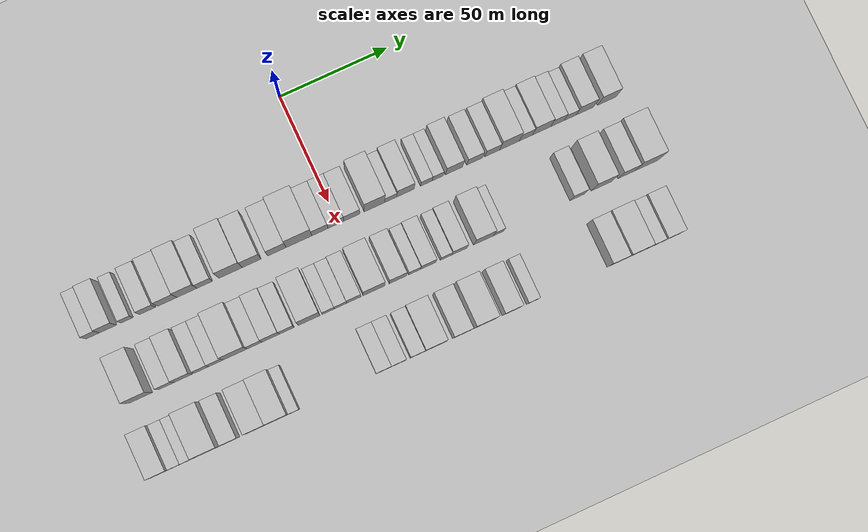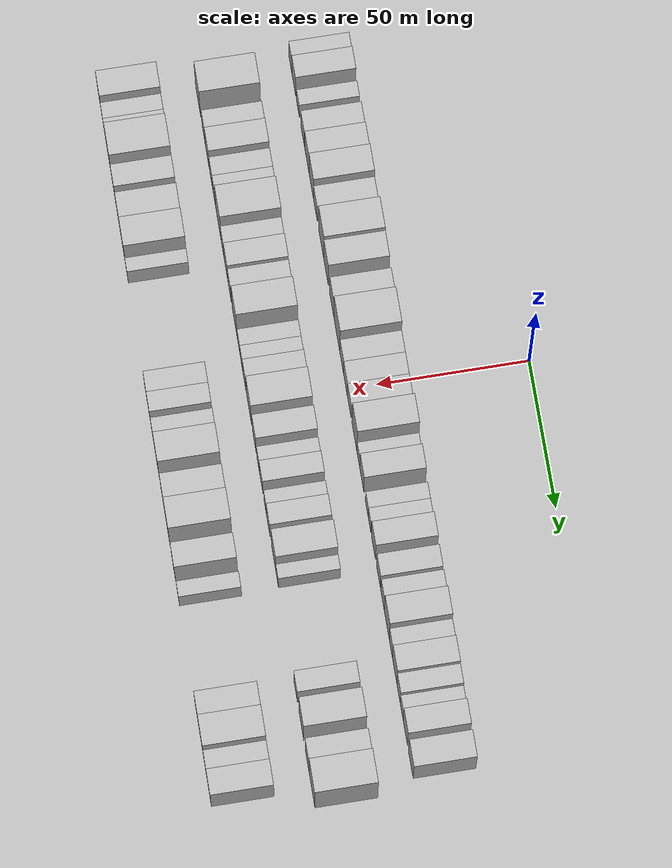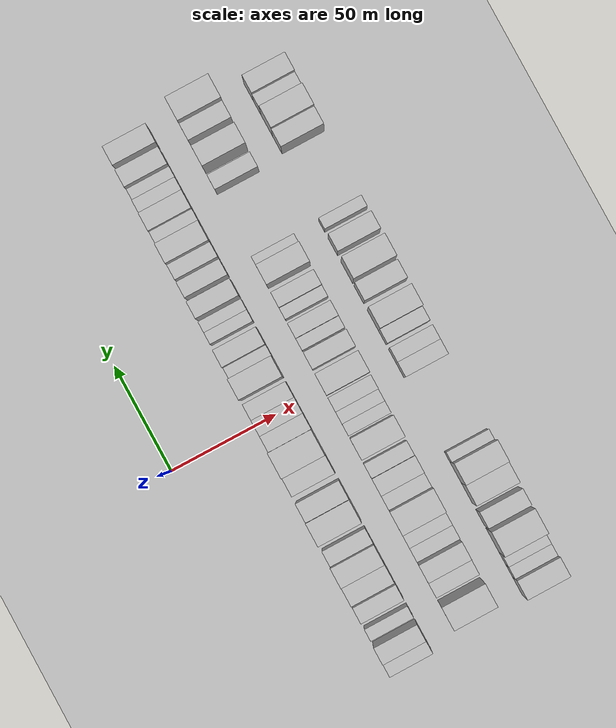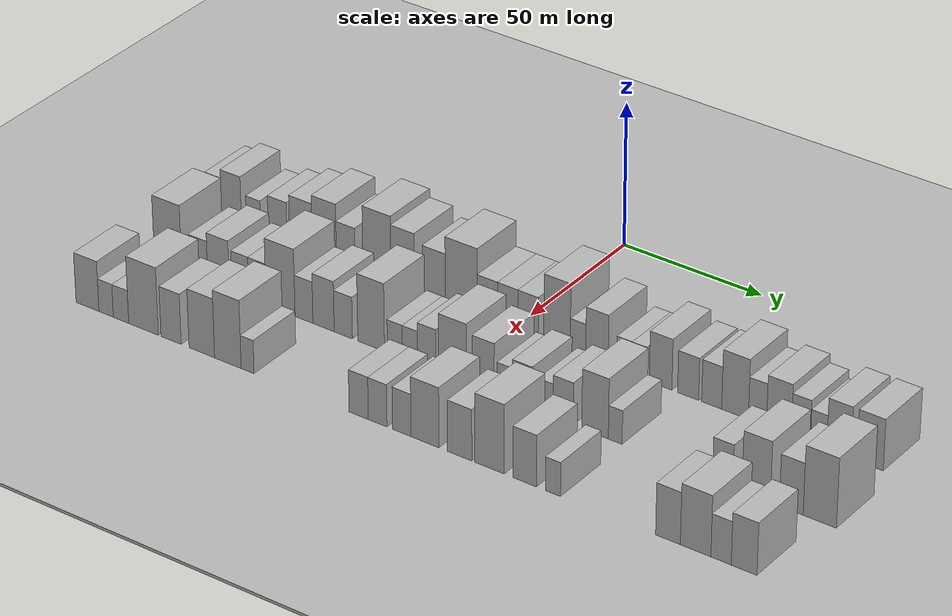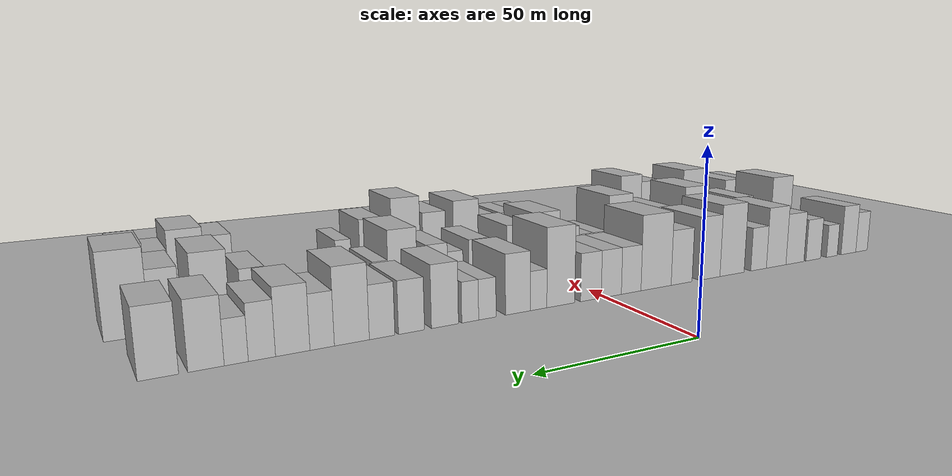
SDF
<sdf version="1.6">
 <world name="default">
  <include><name>ground_plane_1</name><uri>model://HANNAS_ground_plane</uri></include>
  <include>
   <name>ground_plane_2</name>
   <uri>model://HANNAS_ground_plane</uri>
   <pose>100 0 0  0 0 0</pose>
  </include>
  <model name="building_25">
   <static>1</static>
   <pose>50.0000 -112.9445 0 0.000000 0.000000 0.000000</pose>
   <link name="link">
    <pose>0 0 7.50 0 0 0</pose>
    <collision name="collision"><geometry><box><size>20.0000 6.1671 15.0000</size></box></geometry></collision>
    <visual name="visual">
     <cast_shadows>0</cast_shadows>
     <geometry><box><size>20.0000 6.1671 15.0000</size></box></geometry>
     <material>
      <script>
       <uri>model://HANNAS_wall/materials/scripts</uri>
       <uri>model://HANNAS_wall/materials/textures</uri>
       <name>vrc/HANNAS_wall</name>
      </script>
     </material>
    </visual>
   </link>
  </model>
  <model name="building_26">
   <static>1</static>
   <pose>50.0000 -105.9658 0 0.000000 0.000000 0.000000</pose>
   <link name="link">
    <pose>0 0 9.00 0 0 0</pose>
    <collision name="collision"><geometry><box><size>20.0000 7.7904 18.0000</size></box></geometry></collision>
    <visual name="visual">
     <cast_shadows>0</cast_shadows>
     <geometry><box><size>20.0000 7.7904 18.0000</size></box></geometry>
     <material>
      <script>
       <uri>model://HANNAS_wall/materials/scripts</uri>
       <uri>model://HANNAS_wall/materials/textures</uri>
       <name>vrc/HANNAS_wall</name>
      </script>
     </material>
    </visual>
   </link>
  </model>
  <model name="building_27">
   <static>1</static>
   <pose>50.0000 -97.3130 0 0.000000 0.000000 0.000000</pose>
   <link name="link">
    <pose>0 0 6.00 0 0 0</pose>
    <collision name="collision"><geometry><box><size>20.0000 5.5154 12.0000</size></box></geometry></collision>
    <visual name="visual">
     <cast_shadows>0</cast_shadows>
     <geometry><box><size>20.0000 5.5154 12.0000</size></box></geometry>
     <material>
      <script>
       <uri>model://HANNAS_wall/materials/scripts</uri>
       <uri>model://HANNAS_wall/materials/textures</uri>
       <name>vrc/HANNAS_wall</name>
      </script>
     </material>
    </visual>
   </link>
  </model>
  <model name="building_28">
   <static>1</static>
   <pose>50.0000 -87.8930 0 0.000000 0.000000 0.000000</pose>
   <link name="link">
    <pose>0 0 7.50 0 0 0</pose>
    <collision name="collision"><geometry><box><size>20.0000 7.3246 15.0000</size></box></geometry></collision>
    <visual name="visual">
     <cast_shadows>0</cast_shadows>
     <geometry><box><size>20.0000 7.3246 15.0000</size></box></geometry>
     <material>
      <script>
       <uri>model://HANNAS_wall/materials/scripts</uri>
       <uri>model://HANNAS_wall/materials/textures</uri>
       <name>vrc/HANNAS_wall</name>
      </script>
     </material>
    </visual>
   </link>
  </model>
  <model name="building_29">
   <static>1</static>
   <pose>50.0000 -78.8651 0 0.000000 0.000000 0.000000</pose>
   <link name="link">
    <pose>0 0 9.00 0 0 0</pose>
    <collision name="collision"><geometry><box><size>20.0000 8.7313 18.0000</size></box></geometry></collision>
    <visual name="visual">
     <cast_shadows>0</cast_shadows>
     <geometry><box><size>20.0000 8.7313 18.0000</size></box></geometry>
     <material>
      <script>
       <uri>model://HANNAS_wall/materials/scripts</uri>
       <uri>model://HANNAS_wall/materials/textures</uri>
       <name>vrc/HANNAS_wall</name>
      </script>
     </material>
    </visual>
   </link>
  </model>
  <model name="building_30">
   <static>1</static>
   <pose>50.0000 -69.8941 0 0.000000 0.000000 0.000000</pose>
   <link name="link">
    <pose>0 0 10.50 0 0 0</pose>
    <collision name="collision"><geometry><box><size>20.0000 9.2106 21.0000</size></box></geometry></collision>
    <visual name="visual">
     <cast_shadows>0</cast_shadows>
     <geometry><box><size>20.0000 9.2106 21.0000</size></box></geometry>
     <material>
      <script>
       <uri>model://HANNAS_wall/materials/scripts</uri>
       <uri>model://HANNAS_wall/materials/textures</uri>
       <name>vrc/HANNAS_wall</name>
      </script>
     </material>
    </visual>
   </link>
  </model>
  <model name="building_31">
   <static>1</static>
   <pose>50.0000 -61.7174 0 0.000000 0.000000 0.000000</pose>
   <link name="link">
    <pose>0 0 7.50 0 0 0</pose>
    <collision name="collision"><geometry><box><size>20.0000 7.1428 15.0000</size></box></geometry></collision>
    <visual name="visual">
     <cast_shadows>0</cast_shadows>
     <geometry><box><size>20.0000 7.1428 15.0000</size></box></geometry>
     <material>
      <script>
       <uri>model://HANNAS_wall/materials/scripts</uri>
       <uri>model://HANNAS_wall/materials/textures</uri>
       <name>vrc/HANNAS_wall</name>
      </script>
     </material>
    </visual>
   </link>
  </model>
  <model name="building_32">
   <static>1</static>
   <pose>50.0000 -49.8279 0 0.000000 0.000000 0.000000</pose>
   <link name="link">
    <pose>0 0 12.00 0 0 0</pose>
    <collision name="collision"><geometry><box><size>20.0000 10.6363 24.0000</size></box></geometry></collision>
    <visual name="visual">
     <cast_shadows>0</cast_shadows>
     <geometry><box><size>20.0000 10.6363 24.0000</size></box></geometry>
     <material>
      <script>
       <uri>model://HANNAS_wall/materials/scripts</uri>
       <uri>model://HANNAS_wall/materials/textures</uri>
       <name>vrc/HANNAS_wall</name>
      </script>
     </material>
    </visual>
   </link>
  </model>
  <model name="building_33">
   <static>1</static>
   <pose>50.0000 -40.1255 0 0.000000 0.000000 0.000000</pose>
   <link name="link">
    <pose>0 0 10.50 0 0 0</pose>
    <collision name="collision"><geometry><box><size>20.0000 8.7684 21.0000</size></box></geometry></collision>
    <visual name="visual">
     <cast_shadows>0</cast_shadows>
     <geometry><box><size>20.0000 8.7684 21.0000</size></box></geometry>
     <material>
      <script>
       <uri>model://HANNAS_wall/materials/scripts</uri>
       <uri>model://HANNAS_wall/materials/textures</uri>
       <name>vrc/HANNAS_wall</name>
      </script>
     </material>
    </visual>
   </link>
  </model>
  <model name="building_34">
   <static>1</static>
   <pose>50.0000 -28.4858 0 0.000000 0.000000 0.000000</pose>
   <link name="link">
    <pose>0 0 9.00 0 0 0</pose>
    <collision name="collision"><geometry><box><size>20.0000 8.5110 18.0000</size></box></geometry></collision>
    <visual name="visual">
     <cast_shadows>0</cast_shadows>
     <geometry><box><size>20.0000 8.5110 18.0000</size></box></geometry>
     <material>
      <script>
       <uri>model://HANNAS_wall/materials/scripts</uri>
       <uri>model://HANNAS_wall/materials/textures</uri>
       <name>vrc/HANNAS_wall</name>
      </script>
     </material>
    </visual>
   </link>
  </model>
  <model name="building_35">
   <static>1</static>
   <pose>50.0000 -18.3038 0 0.000000 0.000000 0.000000</pose>
   <link name="link">
    <pose>0 0 12.00 0 0 0</pose>
    <collision name="collision"><geometry><box><size>20.0000 11.8528 24.0000</size></box></geometry></collision>
    <visual name="visual">
     <cast_shadows>0</cast_shadows>
     <geometry><box><size>20.0000 11.8528 24.0000</size></box></geometry>
     <material>
      <script>
       <uri>model://HANNAS_wall/materials/scripts</uri>
       <uri>model://HANNAS_wall/materials/textures</uri>
       <name>vrc/HANNAS_wall</name>
      </script>
     </material>
    </visual>
   </link>
  </model>
  <model name="building_36">
   <static>1</static>
   <pose>50.0000 -8.6696 0 0.000000 0.000000 0.000000</pose>
   <link name="link">
    <pose>0 0 7.50 0 0 0</pose>
    <collision name="collision"><geometry><box><size>20.0000 7.4157 15.0000</size></box></geometry></collision>
    <visual name="visual">
     <cast_shadows>0</cast_shadows>
     <geometry><box><size>20.0000 7.4157 15.0000</size></box></geometry>
     <material>
      <script>
       <uri>model://HANNAS_wall/materials/scripts</uri>
       <uri>model://HANNAS_wall/materials/textures</uri>
       <name>vrc/HANNAS_wall</name>
      </script>
     </material>
    </visual>
   </link>
  </model>
  <model name="building_37">
   <static>1</static>
   <pose>50.0000 -1.2589 0 0.000000 0.000000 0.000000</pose>
   <link name="link">
    <pose>0 0 7.50 0 0 0</pose>
    <collision name="collision"><geometry><box><size>20.0000 7.4055 15.0000</size></box></geometry></collision>
    <visual name="visual">
     <cast_shadows>0</cast_shadows>
     <geometry><box><size>20.0000 7.4055 15.0000</size></box></geometry>
     <material>
      <script>
       <uri>model://HANNAS_wall/materials/scripts</uri>
       <uri>model://HANNAS_wall/materials/textures</uri>
       <name>vrc/HANNAS_wall</name>
      </script>
     </material>
    </visual>
   </link>
  </model>
  <model name="building_38">
   <static>1</static>
   <pose>50.0000 6.1546 0 0.000000 0.000000 0.000000</pose>
   <link name="link">
    <pose>0 0 7.50 0 0 0</pose>
    <collision name="collision"><geometry><box><size>20.0000 7.4217 15.0000</size></box></geometry></collision>
    <visual name="visual">
     <cast_shadows>0</cast_shadows>
     <geometry><box><size>20.0000 7.4217 15.0000</size></box></geometry>
     <material>
      <script>
       <uri>model://HANNAS_wall/materials/scripts</uri>
       <uri>model://HANNAS_wall/materials/textures</uri>
       <name>vrc/HANNAS_wall</name>
      </script>
     </material>
    </visual>
   </link>
  </model>
  <model name="building_39">
   <static>1</static>
   <pose>50.0000 16.6704 0 0.000000 0.000000 0.000000</pose>
   <link name="link">
    <pose>0 0 12.00 0 0 0</pose>
    <collision name="collision"><geometry><box><size>20.0000 9.6098 24.0000</size></box></geometry></collision>
    <visual name="visual">
     <cast_shadows>0</cast_shadows>
     <geometry><box><size>20.0000 9.6098 24.0000</size></box></geometry>
     <material>
      <script>
       <uri>model://HANNAS_wall/materials/scripts</uri>
       <uri>model://HANNAS_wall/materials/textures</uri>
       <name>vrc/HANNAS_wall</name>
      </script>
     </material>
    </visual>
   </link>
  </model>
  <model name="building_40">
   <static>1</static>
   <pose>50.0000 24.2228 0 0.000000 0.000000 0.000000</pose>
   <link name="link">
    <pose>0 0 6.00 0 0 0</pose>
    <collision name="collision"><geometry><box><size>20.0000 5.4951 12.0000</size></box></geometry></collision>
    <visual name="visual">
     <cast_shadows>0</cast_shadows>
     <geometry><box><size>20.0000 5.4951 12.0000</size></box></geometry>
     <material>
      <script>
       <uri>model://HANNAS_wall/materials/scripts</uri>
       <uri>model://HANNAS_wall/materials/textures</uri>
       <name>vrc/HANNAS_wall</name>
      </script>
     </material>
    </visual>
   </link>
  </model>
  <model name="building_41">
   <static>1</static>
   <pose>50.0000 30.9962 0 0.000000 0.000000 0.000000</pose>
   <link name="link">
    <pose>0 0 9.00 0 0 0</pose>
    <collision name="collision"><geometry><box><size>20.0000 8.0516 18.0000</size></box></geometry></collision>
    <visual name="visual">
     <cast_shadows>0</cast_shadows>
     <geometry><box><size>20.0000 8.0516 18.0000</size></box></geometry>
     <material>
      <script>
       <uri>model://HANNAS_wall/materials/scripts</uri>
       <uri>model://HANNAS_wall/materials/textures</uri>
       <name>vrc/HANNAS_wall</name>
      </script>
     </material>
    </visual>
   </link>
  </model>
  <model name="building_42">
   <static>1</static>
   <pose>50.0000 40.7320 0 0.000000 0.000000 0.000000</pose>
   <link name="link">
    <pose>0 0 6.00 0 0 0</pose>
    <collision name="collision"><geometry><box><size>20.0000 5.4200 12.0000</size></box></geometry></collision>
    <visual name="visual">
     <cast_shadows>0</cast_shadows>
     <geometry><box><size>20.0000 5.4200 12.0000</size></box></geometry>
     <material>
      <script>
       <uri>model://HANNAS_wall/materials/scripts</uri>
       <uri>model://HANNAS_wall/materials/textures</uri>
       <name>vrc/HANNAS_wall</name>
      </script>
     </material>
    </visual>
   </link>
  </model>
  <model name="building_43">
   <static>1</static>
   <pose>50.0000 46.0073 0 0.000000 0.000000 0.000000</pose>
   <link name="link">
    <pose>0 0 6.00 0 0 0</pose>
    <collision name="collision"><geometry><box><size>20.0000 5.1305 12.0000</size></box></geometry></collision>
    <visual name="visual">
     <cast_shadows>0</cast_shadows>
     <geometry><box><size>20.0000 5.1305 12.0000</size></box></geometry>
     <material>
      <script>
       <uri>model://HANNAS_wall/materials/scripts</uri>
       <uri>model://HANNAS_wall/materials/textures</uri>
       <name>vrc/HANNAS_wall</name>
      </script>
     </material>
    </visual>
   </link>
  </model>
  <model name="building_44">
   <static>1</static>
   <pose>50.0000 53.5594 0 0.000000 0.000000 0.000000</pose>
   <link name="link">
    <pose>0 0 9.00 0 0 0</pose>
    <collision name="collision"><geometry><box><size>20.0000 7.9737 18.0000</size></box></geometry></collision>
    <visual name="visual">
     <cast_shadows>0</cast_shadows>
     <geometry><box><size>20.0000 7.9737 18.0000</size></box></geometry>
     <material>
      <script>
       <uri>model://HANNAS_wall/materials/scripts</uri>
       <uri>model://HANNAS_wall/materials/textures</uri>
       <name>vrc/HANNAS_wall</name>
      </script>
     </material>
    </visual>
   </link>
  </model>
  <model name="building_45">
   <static>1</static>
   <pose>50.0000 63.2294 0 0.000000 0.000000 0.000000</pose>
   <link name="link">
    <pose>0 0 7.50 0 0 0</pose>
    <collision name="collision"><geometry><box><size>20.0000 7.3664 15.0000</size></box></geometry></collision>
    <visual name="visual">
     <cast_shadows>0</cast_shadows>
     <geometry><box><size>20.0000 7.3664 15.0000</size></box></geometry>
     <material>
      <script>
       <uri>model://HANNAS_wall/materials/scripts</uri>
       <uri>model://HANNAS_wall/materials/textures</uri>
       <name>vrc/HANNAS_wall</name>
      </script>
     </material>
    </visual>
   </link>
  </model>
  <model name="building_46">
   <static>1</static>
   <pose>50.0000 71.3932 0 0.000000 0.000000 0.000000</pose>
   <link name="link">
    <pose>0 0 7.50 0 0 0</pose>
    <collision name="collision"><geometry><box><size>20.0000 6.9611 15.0000</size></box></geometry></collision>
    <visual name="visual">
     <cast_shadows>0</cast_shadows>
     <geometry><box><size>20.0000 6.9611 15.0000</size></box></geometry>
     <material>
      <script>
       <uri>model://HANNAS_wall/materials/scripts</uri>
       <uri>model://HANNAS_wall/materials/textures</uri>
       <name>vrc/HANNAS_wall</name>
      </script>
     </material>
    </visual>
   </link>
  </model>
  <model name="building_47">
   <static>1</static>
   <pose>50.0000 79.4770 0 0.000000 0.000000 0.000000</pose>
   <link name="link">
    <pose>0 0 10.50 0 0 0</pose>
    <collision name="collision"><geometry><box><size>20.0000 9.2066 21.0000</size></box></geometry></collision>
    <visual name="visual">
     <cast_shadows>0</cast_shadows>
     <geometry><box><size>20.0000 9.2066 21.0000</size></box></geometry>
     <material>
      <script>
       <uri>model://HANNAS_wall/materials/scripts</uri>
       <uri>model://HANNAS_wall/materials/textures</uri>
       <name>vrc/HANNAS_wall</name>
      </script>
     </material>
    </visual>
   </link>
  </model>
  <model name="building_48">
   <static>1</static>
   <pose>50.0000 87.1855 0 0.000000 0.000000 0.000000</pose>
   <link name="link">
    <pose>0 0 7.50 0 0 0</pose>
    <collision name="collision"><geometry><box><size>20.0000 6.2103 15.0000</size></box></geometry></collision>
    <visual name="visual">
     <cast_shadows>0</cast_shadows>
     <geometry><box><size>20.0000 6.2103 15.0000</size></box></geometry>
     <material>
      <script>
       <uri>model://HANNAS_wall/materials/scripts</uri>
       <uri>model://HANNAS_wall/materials/textures</uri>
       <name>vrc/HANNAS_wall</name>
      </script>
     </material>
    </visual>
   </link>
  </model>
  <model name="building_49">
   <static>1</static>
   <pose>50.0000 94.5205 0 0.000000 0.000000 0.000000</pose>
   <link name="link">
    <pose>0 0 9.00 0 0 0</pose>
    <collision name="collision"><geometry><box><size>20.0000 8.4597 18.0000</size></box></geometry></collision>
    <visual name="visual">
     <cast_shadows>0</cast_shadows>
     <geometry><box><size>20.0000 8.4597 18.0000</size></box></geometry>
     <material>
      <script>
       <uri>model://HANNAS_wall/materials/scripts</uri>
       <uri>model://HANNAS_wall/materials/textures</uri>
       <name>vrc/HANNAS_wall</name>
      </script>
     </material>
    </visual>
   </link>
  </model>
  <model name="building_50">
   <static>1</static>
   <pose>50.0000 101.9790 0 0.000000 0.000000 0.000000</pose>
   <link name="link">
    <pose>0 0 7.50 0 0 0</pose>
    <collision name="collision"><geometry><box><size>20.0000 6.4573 15.0000</size></box></geometry></collision>
    <visual name="visual">
     <cast_shadows>0</cast_shadows>
     <geometry><box><size>20.0000 6.4573 15.0000</size></box></geometry>
     <material>
      <script>
       <uri>model://HANNAS_wall/materials/scripts</uri>
       <uri>model://HANNAS_wall/materials/textures</uri>
       <name>vrc/HANNAS_wall</name>
      </script>
     </material>
    </visual>
   </link>
  </model>
  <model name="building_51">
   <static>1</static>
   <pose>50.0000 107.9835 0 0.000000 0.000000 0.000000</pose>
   <link name="link">
    <pose>0 0 6.00 0 0 0</pose>
    <collision name="collision"><geometry><box><size>20.0000 5.5517 12.0000</size></box></geometry></collision>
    <visual name="visual">
     <cast_shadows>0</cast_shadows>
     <geometry><box><size>20.0000 5.5517 12.0000</size></box></geometry>
     <material>
      <script>
       <uri>model://HANNAS_wall/materials/scripts</uri>
       <uri>model://HANNAS_wall/materials/textures</uri>
       <name>vrc/HANNAS_wall</name>
      </script>
     </material>
    </visual>
   </link>
  </model>
  <model name="building_52">
   <static>1</static>
   <pose>50.0000 114.8233 0 0.000000 0.000000 0.000000</pose>
   <link name="link">
    <pose>0 0 9.00 0 0 0</pose>
    <collision name="collision"><geometry><box><size>20.0000 8.1278 18.0000</size></box></geometry></collision>
    <visual name="visual">
     <cast_shadows>0</cast_shadows>
     <geometry><box><size>20.0000 8.1278 18.0000</size></box></geometry>
     <material>
      <script>
       <uri>model://HANNAS_wall/materials/scripts</uri>
       <uri>model://HANNAS_wall/materials/textures</uri>
       <name>vrc/HANNAS_wall</name>
      </script>
     </material>
    </visual>
   </link>
  </model>
  <model name="building_53">
   <static>1</static>
   <pose>50.0000 125.2876 0 0.000000 0.000000 0.000000</pose>
   <link name="link">
    <pose>0 0 9.00 0 0 0</pose>
    <collision name="collision"><geometry><box><size>20.0000 8.8008 18.0000</size></box></geometry></collision>
    <visual name="visual">
     <cast_shadows>0</cast_shadows>
     <geometry><box><size>20.0000 8.8008 18.0000</size></box></geometry>
     <material>
      <script>
       <uri>model://HANNAS_wall/materials/scripts</uri>
       <uri>model://HANNAS_wall/materials/textures</uri>
       <name>vrc/HANNAS_wall</name>
      </script>
     </material>
    </visual>
   </link>
  </model>
  <model name="building_103">
   <static>1</static>
   <pose>82.0000 -105.2706 0 0.000000 0.000000 0.000000</pose>
   <link name="link">
    <pose>0 0 12.00 0 0 0</pose>
    <collision name="collision"><geometry><box><size>20.0000 10.6462 24.0000</size></box></geometry></collision>
    <visual name="visual">
     <cast_shadows>0</cast_shadows>
     <geometry><box><size>20.0000 10.6462 24.0000</size></box></geometry>
     <material>
      <script>
       <uri>model://HANNAS_wall/materials/scripts</uri>
       <uri>model://HANNAS_wall/materials/textures</uri>
       <name>vrc/HANNAS_wall</name>
      </script>
     </material>
    </visual>
   </link>
  </model>
  <model name="building_104">
   <static>1</static>
   <pose>82.0000 -93.3860 0 0.000000 0.000000 0.000000</pose>
   <link name="link">
    <pose>0 0 7.50 0 0 0</pose>
    <collision name="collision"><geometry><box><size>20.0000 7.1229 15.0000</size></box></geometry></collision>
    <visual name="visual">
     <cast_shadows>0</cast_shadows>
     <geometry><box><size>20.0000 7.1229 15.0000</size></box></geometry>
     <material>
      <script>
       <uri>model://HANNAS_wall/materials/scripts</uri>
       <uri>model://HANNAS_wall/materials/textures</uri>
       <name>vrc/HANNAS_wall</name>
      </script>
     </material>
    </visual>
   </link>
  </model>
  <model name="building_105">
   <static>1</static>
   <pose>82.0000 -85.6844 0 0.000000 0.000000 0.000000</pose>
   <link name="link">
    <pose>0 0 9.00 0 0 0</pose>
    <collision name="collision"><geometry><box><size>20.0000 8.2803 18.0000</size></box></geometry></collision>
    <visual name="visual">
     <cast_shadows>0</cast_shadows>
     <geometry><box><size>20.0000 8.2803 18.0000</size></box></geometry>
     <material>
      <script>
       <uri>model://HANNAS_wall/materials/scripts</uri>
       <uri>model://HANNAS_wall/materials/textures</uri>
       <name>vrc/HANNAS_wall</name>
      </script>
     </material>
    </visual>
   </link>
  </model>
  <model name="building_106">
   <static>1</static>
   <pose>82.0000 -77.3197 0 0.000000 0.000000 0.000000</pose>
   <link name="link">
    <pose>0 0 7.50 0 0 0</pose>
    <collision name="collision"><geometry><box><size>20.0000 6.4492 15.0000</size></box></geometry></collision>
    <visual name="visual">
     <cast_shadows>0</cast_shadows>
     <geometry><box><size>20.0000 6.4492 15.0000</size></box></geometry>
     <material>
      <script>
       <uri>model://HANNAS_wall/materials/scripts</uri>
       <uri>model://HANNAS_wall/materials/textures</uri>
       <name>vrc/HANNAS_wall</name>
      </script>
     </material>
    </visual>
   </link>
  </model>
  <model name="building_107">
   <static>1</static>
   <pose>82.0000 -70.7892 0 0.000000 0.000000 0.000000</pose>
   <link name="link">
    <pose>0 0 7.50 0 0 0</pose>
    <collision name="collision"><geometry><box><size>20.0000 6.6118 15.0000</size></box></geometry></collision>
    <visual name="visual">
     <cast_shadows>0</cast_shadows>
     <geometry><box><size>20.0000 6.6118 15.0000</size></box></geometry>
     <material>
      <script>
       <uri>model://HANNAS_wall/materials/scripts</uri>
       <uri>model://HANNAS_wall/materials/textures</uri>
       <name>vrc/HANNAS_wall</name>
      </script>
     </material>
    </visual>
   </link>
  </model>
  <model name="building_108">
   <static>1</static>
   <pose>82.0000 -62.0053 0 0.000000 0.000000 0.000000</pose>
   <link name="link">
    <pose>0 0 12.00 0 0 0</pose>
    <collision name="collision"><geometry><box><size>20.0000 10.9559 24.0000</size></box></geometry></collision>
    <visual name="visual">
     <cast_shadows>0</cast_shadows>
     <geometry><box><size>20.0000 10.9559 24.0000</size></box></geometry>
     <material>
      <script>
       <uri>model://HANNAS_wall/materials/scripts</uri>
       <uri>model://HANNAS_wall/materials/textures</uri>
       <name>vrc/HANNAS_wall</name>
      </script>
     </material>
    </visual>
   </link>
  </model>
  <model name="building_109">
   <static>1</static>
   <pose>82.0000 -53.1599 0 0.000000 0.000000 0.000000</pose>
   <link name="link">
    <pose>0 0 7.50 0 0 0</pose>
    <collision name="collision"><geometry><box><size>20.0000 6.7348 15.0000</size></box></geometry></collision>
    <visual name="visual">
     <cast_shadows>0</cast_shadows>
     <geometry><box><size>20.0000 6.7348 15.0000</size></box></geometry>
     <material>
      <script>
       <uri>model://HANNAS_wall/materials/scripts</uri>
       <uri>model://HANNAS_wall/materials/textures</uri>
       <name>vrc/HANNAS_wall</name>
      </script>
     </material>
    </visual>
   </link>
  </model>
  <model name="building_110">
   <static>1</static>
   <pose>82.0000 -45.8063 0 0.000000 0.000000 0.000000</pose>
   <link name="link">
    <pose>0 0 9.00 0 0 0</pose>
    <collision name="collision"><geometry><box><size>20.0000 7.9724 18.0000</size></box></geometry></collision>
    <visual name="visual">
     <cast_shadows>0</cast_shadows>
     <geometry><box><size>20.0000 7.9724 18.0000</size></box></geometry>
     <material>
      <script>
       <uri>model://HANNAS_wall/materials/scripts</uri>
       <uri>model://HANNAS_wall/materials/textures</uri>
       <name>vrc/HANNAS_wall</name>
      </script>
     </material>
    </visual>
   </link>
  </model>
  <model name="building_111">
   <static>1</static>
   <pose>82.0000 -38.4213 0 0.000000 0.000000 0.000000</pose>
   <link name="link">
    <pose>0 0 7.50 0 0 0</pose>
    <collision name="collision"><geometry><box><size>20.0000 6.7975 15.0000</size></box></geometry></collision>
    <visual name="visual">
     <cast_shadows>0</cast_shadows>
     <geometry><box><size>20.0000 6.7975 15.0000</size></box></geometry>
     <material>
      <script>
       <uri>model://HANNAS_wall/materials/scripts</uri>
       <uri>model://HANNAS_wall/materials/textures</uri>
       <name>vrc/HANNAS_wall</name>
      </script>
     </material>
    </visual>
   </link>
  </model>
  <model name="building_112">
   <static>1</static>
   <pose>82.0000 -28.0802 0 0.000000 0.000000 0.000000</pose>
   <link name="link">
    <pose>0 0 12.00 0 0 0</pose>
    <collision name="collision"><geometry><box><size>20.0000 9.8848 24.0000</size></box></geometry></collision>
    <visual name="visual">
     <cast_shadows>0</cast_shadows>
     <geometry><box><size>20.0000 9.8848 24.0000</size></box></geometry>
     <material>
      <script>
       <uri>model://HANNAS_wall/materials/scripts</uri>
       <uri>model://HANNAS_wall/materials/textures</uri>
       <name>vrc/HANNAS_wall</name>
      </script>
     </material>
    </visual>
   </link>
  </model>
  <model name="building_113">
   <static>1</static>
   <pose>82.0000 -19.3575 0 0.000000 0.000000 0.000000</pose>
   <link name="link">
    <pose>0 0 6.00 0 0 0</pose>
    <collision name="collision"><geometry><box><size>20.0000 5.5605 12.0000</size></box></geometry></collision>
    <visual name="visual">
     <cast_shadows>0</cast_shadows>
     <geometry><box><size>20.0000 5.5605 12.0000</size></box></geometry>
     <material>
      <script>
       <uri>model://HANNAS_wall/materials/scripts</uri>
       <uri>model://HANNAS_wall/materials/textures</uri>
       <name>vrc/HANNAS_wall</name>
      </script>
     </material>
    </visual>
   </link>
  </model>
  <model name="building_114">
   <static>1</static>
   <pose>82.0000 -13.7772 0 0.000000 0.000000 0.000000</pose>
   <link name="link">
    <pose>0 0 6.00 0 0 0</pose>
    <collision name="collision"><geometry><box><size>20.0000 5.6001 12.0000</size></box></geometry></collision>
    <visual name="visual">
     <cast_shadows>0</cast_shadows>
     <geometry><box><size>20.0000 5.6001 12.0000</size></box></geometry>
     <material>
      <script>
       <uri>model://HANNAS_wall/materials/scripts</uri>
       <uri>model://HANNAS_wall/materials/textures</uri>
       <name>vrc/HANNAS_wall</name>
      </script>
     </material>
    </visual>
   </link>
  </model>
  <model name="building_115">
   <static>1</static>
   <pose>82.0000 -7.6614 0 0.000000 0.000000 0.000000</pose>
   <link name="link">
    <pose>0 0 7.50 0 0 0</pose>
    <collision name="collision"><geometry><box><size>20.0000 6.6314 15.0000</size></box></geometry></collision>
    <visual name="visual">
     <cast_shadows>0</cast_shadows>
     <geometry><box><size>20.0000 6.6314 15.0000</size></box></geometry>
     <material>
      <script>
       <uri>model://HANNAS_wall/materials/scripts</uri>
       <uri>model://HANNAS_wall/materials/textures</uri>
       <name>vrc/HANNAS_wall</name>
      </script>
     </material>
    </visual>
   </link>
  </model>
  <model name="building_116">
   <static>1</static>
   <pose>82.0000 1.6792 0 0.000000 0.000000 0.000000</pose>
   <link name="link">
    <pose>0 0 10.50 0 0 0</pose>
    <collision name="collision"><geometry><box><size>20.0000 10.0498 21.0000</size></box></geometry></collision>
    <visual name="visual">
     <cast_shadows>0</cast_shadows>
     <geometry><box><size>20.0000 10.0498 21.0000</size></box></geometry>
     <material>
      <script>
       <uri>model://HANNAS_wall/materials/scripts</uri>
       <uri>model://HANNAS_wall/materials/textures</uri>
       <name>vrc/HANNAS_wall</name>
      </script>
     </material>
    </visual>
   </link>
  </model>
  <model name="building_117">
   <static>1</static>
   <pose>82.0000 12.6899 0 0.000000 0.000000 0.000000</pose>
   <link name="link">
    <pose>0 0 9.00 0 0 0</pose>
    <collision name="collision"><geometry><box><size>20.0000 7.9717 18.0000</size></box></geometry></collision>
    <visual name="visual">
     <cast_shadows>0</cast_shadows>
     <geometry><box><size>20.0000 7.9717 18.0000</size></box></geometry>
     <material>
      <script>
       <uri>model://HANNAS_wall/materials/scripts</uri>
       <uri>model://HANNAS_wall/materials/textures</uri>
       <name>vrc/HANNAS_wall</name>
      </script>
     </material>
    </visual>
   </link>
  </model>
  <model name="building_118">
   <static>1</static>
   <pose>82.0000 20.4394 0 0.000000 0.000000 0.000000</pose>
   <link name="link">
    <pose>0 0 6.00 0 0 0</pose>
    <collision name="collision"><geometry><box><size>20.0000 5.5274 12.0000</size></box></geometry></collision>
    <visual name="visual">
     <cast_shadows>0</cast_shadows>
     <geometry><box><size>20.0000 5.5274 12.0000</size></box></geometry>
     <material>
      <script>
       <uri>model://HANNAS_wall/materials/scripts</uri>
       <uri>model://HANNAS_wall/materials/textures</uri>
       <name>vrc/HANNAS_wall</name>
      </script>
     </material>
    </visual>
   </link>
  </model>
  <model name="building_119">
   <static>1</static>
   <pose>82.0000 26.7462 0 0.000000 0.000000 0.000000</pose>
   <link name="link">
    <pose>0 0 7.50 0 0 0</pose>
    <collision name="collision"><geometry><box><size>20.0000 7.0862 15.0000</size></box></geometry></collision>
    <visual name="visual">
     <cast_shadows>0</cast_shadows>
     <geometry><box><size>20.0000 7.0862 15.0000</size></box></geometry>
     <material>
      <script>
       <uri>model://HANNAS_wall/materials/scripts</uri>
       <uri>model://HANNAS_wall/materials/textures</uri>
       <name>vrc/HANNAS_wall</name>
      </script>
     </material>
    </visual>
   </link>
  </model>
  <model name="building_120">
   <static>1</static>
   <pose>82.0000 34.9307 0 0.000000 0.000000 0.000000</pose>
   <link name="link">
    <pose>0 0 6.00 0 0 0</pose>
    <collision name="collision"><geometry><box><size>20.0000 5.2828 12.0000</size></box></geometry></collision>
    <visual name="visual">
     <cast_shadows>0</cast_shadows>
     <geometry><box><size>20.0000 5.2828 12.0000</size></box></geometry>
     <material>
      <script>
       <uri>model://HANNAS_wall/materials/scripts</uri>
       <uri>model://HANNAS_wall/materials/textures</uri>
       <name>vrc/HANNAS_wall</name>
      </script>
     </material>
    </visual>
   </link>
  </model>
  <model name="building_121">
   <static>1</static>
   <pose>82.0000 41.1323 0 0.000000 0.000000 0.000000</pose>
   <link name="link">
    <pose>0 0 7.50 0 0 0</pose>
    <collision name="collision"><geometry><box><size>20.0000 7.1203 15.0000</size></box></geometry></collision>
    <visual name="visual">
     <cast_shadows>0</cast_shadows>
     <geometry><box><size>20.0000 7.1203 15.0000</size></box></geometry>
     <material>
      <script>
       <uri>model://HANNAS_wall/materials/scripts</uri>
       <uri>model://HANNAS_wall/materials/textures</uri>
       <name>vrc/HANNAS_wall</name>
      </script>
     </material>
    </visual>
   </link>
  </model>
  <model name="building_122">
   <static>1</static>
   <pose>82.0000 52.3234 0 0.000000 0.000000 0.000000</pose>
   <link name="link">
    <pose>0 0 10.50 0 0 0</pose>
    <collision name="collision"><geometry><box><size>20.0000 9.2619 21.0000</size></box></geometry></collision>
    <visual name="visual">
     <cast_shadows>0</cast_shadows>
     <geometry><box><size>20.0000 9.2619 21.0000</size></box></geometry>
     <material>
      <script>
       <uri>model://HANNAS_wall/materials/scripts</uri>
       <uri>model://HANNAS_wall/materials/textures</uri>
       <name>vrc/HANNAS_wall</name>
      </script>
     </material>
    </visual>
   </link>
  </model>
  <model name="building_123">
   <static>1</static>
   <pose>82.0000 59.3601 0 0.000000 0.000000 0.000000</pose>
   <link name="link">
    <pose>0 0 6.00 0 0 0</pose>
    <collision name="collision"><geometry><box><size>20.0000 4.8115 12.0000</size></box></geometry></collision>
    <visual name="visual">
     <cast_shadows>0</cast_shadows>
     <geometry><box><size>20.0000 4.8115 12.0000</size></box></geometry>
     <material>
      <script>
       <uri>model://HANNAS_wall/materials/scripts</uri>
       <uri>model://HANNAS_wall/materials/textures</uri>
       <name>vrc/HANNAS_wall</name>
      </script>
     </material>
    </visual>
   </link>
  </model>
  <model name="building_124">
   <static>1</static>
   <pose>82.0000 96.1634 0 0.000000 0.000000 0.000000</pose>
   <link name="link">
    <pose>0 0 7.50 0 0 0</pose>
    <collision name="collision"><geometry><box><size>20.0000 6.9318 15.0000</size></box></geometry></collision>
    <visual name="visual">
     <cast_shadows>0</cast_shadows>
     <geometry><box><size>20.0000 6.9318 15.0000</size></box></geometry>
     <material>
      <script>
       <uri>model://HANNAS_wall/materials/scripts</uri>
       <uri>model://HANNAS_wall/materials/textures</uri>
       <name>vrc/HANNAS_wall</name>
      </script>
     </material>
    </visual>
   </link>
  </model>
  <model name="building_125">
   <static>1</static>
   <pose>82.0000 107.3939 0 0.000000 0.000000 0.000000</pose>
   <link name="link">
    <pose>0 0 10.50 0 0 0</pose>
    <collision name="collision"><geometry><box><size>20.0000 9.5292 21.0000</size></box></geometry></collision>
    <visual name="visual">
     <cast_shadows>0</cast_shadows>
     <geometry><box><size>20.0000 9.5292 21.0000</size></box></geometry>
     <material>
      <script>
       <uri>model://HANNAS_wall/materials/scripts</uri>
       <uri>model://HANNAS_wall/materials/textures</uri>
       <name>vrc/HANNAS_wall</name>
      </script>
     </material>
    </visual>
   </link>
  </model>
  <model name="building_126">
   <static>1</static>
   <pose>82.0000 119.0932 0 0.000000 0.000000 0.000000</pose>
   <link name="link">
    <pose>0 0 9.00 0 0 0</pose>
    <collision name="collision"><geometry><box><size>20.0000 7.8694 18.0000</size></box></geometry></collision>
    <visual name="visual">
     <cast_shadows>0</cast_shadows>
     <geometry><box><size>20.0000 7.8694 18.0000</size></box></geometry>
     <material>
      <script>
       <uri>model://HANNAS_wall/materials/scripts</uri>
       <uri>model://HANNAS_wall/materials/textures</uri>
       <name>vrc/HANNAS_wall</name>
      </script>
     </material>
    </visual>
   </link>
  </model>
  <model name="building_127">
   <static>1</static>
   <pose>82.0000 128.5124 0 0.000000 0.000000 0.000000</pose>
   <link name="link">
    <pose>0 0 12.00 0 0 0</pose>
    <collision name="collision"><geometry><box><size>20.0000 10.9690 24.0000</size></box></geometry></collision>
    <visual name="visual">
     <cast_shadows>0</cast_shadows>
     <geometry><box><size>20.0000 10.9690 24.0000</size></box></geometry>
     <material>
      <script>
       <uri>model://HANNAS_wall/materials/scripts</uri>
       <uri>model://HANNAS_wall/materials/textures</uri>
       <name>vrc/HANNAS_wall</name>
      </script>
     </material>
    </visual>
   </link>
  </model>
  <model name="building_179">
   <static>1</static>
   <pose>114.0000 -110.4467 0 0.000000 0.000000 0.000000</pose>
   <link name="link">
    <pose>0 0 9.00 0 0 0</pose>
    <collision name="collision"><geometry><box><size>20.0000 8.9028 18.0000</size></box></geometry></collision>
    <visual name="visual">
     <cast_shadows>0</cast_shadows>
     <geometry><box><size>20.0000 8.9028 18.0000</size></box></geometry>
     <material>
      <script>
       <uri>model://HANNAS_wall/materials/scripts</uri>
       <uri>model://HANNAS_wall/materials/textures</uri>
       <name>vrc/HANNAS_wall</name>
      </script>
     </material>
    </visual>
   </link>
  </model>
  <model name="building_180">
   <static>1</static>
   <pose>114.0000 -103.2134 0 0.000000 0.000000 0.000000</pose>
   <link name="link">
    <pose>0 0 6.00 0 0 0</pose>
    <collision name="collision"><geometry><box><size>20.0000 5.5638 12.0000</size></box></geometry></collision>
    <visual name="visual">
     <cast_shadows>0</cast_shadows>
     <geometry><box><size>20.0000 5.5638 12.0000</size></box></geometry>
     <material>
      <script>
       <uri>model://HANNAS_wall/materials/scripts</uri>
       <uri>model://HANNAS_wall/materials/textures</uri>
       <name>vrc/HANNAS_wall</name>
      </script>
     </material>
    </visual>
   </link>
  </model>
  <model name="building_181">
   <static>1</static>
   <pose>114.0000 -97.4649 0 0.000000 0.000000 0.000000</pose>
   <link name="link">
    <pose>0 0 6.00 0 0 0</pose>
    <collision name="collision"><geometry><box><size>20.0000 5.9332 12.0000</size></box></geometry></collision>
    <visual name="visual">
     <cast_shadows>0</cast_shadows>
     <geometry><box><size>20.0000 5.9332 12.0000</size></box></geometry>
     <material>
      <script>
       <uri>model://HANNAS_wall/materials/scripts</uri>
       <uri>model://HANNAS_wall/materials/textures</uri>
       <name>vrc/HANNAS_wall</name>
      </script>
     </material>
    </visual>
   </link>
  </model>
  <model name="building_182">
   <static>1</static>
   <pose>114.0000 -88.8059 0 0.000000 0.000000 0.000000</pose>
   <link name="link">
    <pose>0 0 12.00 0 0 0</pose>
    <collision name="collision"><geometry><box><size>20.0000 11.3849 24.0000</size></box></geometry></collision>
    <visual name="visual">
     <cast_shadows>0</cast_shadows>
     <geometry><box><size>20.0000 11.3849 24.0000</size></box></geometry>
     <material>
      <script>
       <uri>model://HANNAS_wall/materials/scripts</uri>
       <uri>model://HANNAS_wall/materials/textures</uri>
       <name>vrc/HANNAS_wall</name>
      </script>
     </material>
    </visual>
   </link>
  </model>
  <model name="building_183">
   <static>1</static>
   <pose>114.0000 -78.2723 0 0.000000 0.000000 0.000000</pose>
   <link name="link">
    <pose>0 0 9.00 0 0 0</pose>
    <collision name="collision"><geometry><box><size>20.0000 7.6823 18.0000</size></box></geometry></collision>
    <visual name="visual">
     <cast_shadows>0</cast_shadows>
     <geometry><box><size>20.0000 7.6823 18.0000</size></box></geometry>
     <material>
      <script>
       <uri>model://HANNAS_wall/materials/scripts</uri>
       <uri>model://HANNAS_wall/materials/textures</uri>
       <name>vrc/HANNAS_wall</name>
      </script>
     </material>
    </visual>
   </link>
  </model>
  <model name="building_184">
   <static>1</static>
   <pose>114.0000 -66.6105 0 0.000000 0.000000 0.000000</pose>
   <link name="link">
    <pose>0 0 10.50 0 0 0</pose>
    <collision name="collision"><geometry><box><size>20.0000 9.6412 21.0000</size></box></geometry></collision>
    <visual name="visual">
     <cast_shadows>0</cast_shadows>
     <geometry><box><size>20.0000 9.6412 21.0000</size></box></geometry>
     <material>
      <script>
       <uri>model://HANNAS_wall/materials/scripts</uri>
       <uri>model://HANNAS_wall/materials/textures</uri>
       <name>vrc/HANNAS_wall</name>
      </script>
     </material>
    </visual>
   </link>
  </model>
  <model name="building_185">
   <static>1</static>
   <pose>114.0000 -56.8104 0 0.000000 0.000000 0.000000</pose>
   <link name="link">
    <pose>0 0 12.00 0 0 0</pose>
    <collision name="collision"><geometry><box><size>20.0000 9.9591 24.0000</size></box></geometry></collision>
    <visual name="visual">
     <cast_shadows>0</cast_shadows>
     <geometry><box><size>20.0000 9.9591 24.0000</size></box></geometry>
     <material>
      <script>
       <uri>model://HANNAS_wall/materials/scripts</uri>
       <uri>model://HANNAS_wall/materials/textures</uri>
       <name>vrc/HANNAS_wall</name>
      </script>
     </material>
    </visual>
   </link>
  </model>
  <model name="building_186">
   <static>1</static>
   <pose>114.0000 -49.4302 0 0.000000 0.000000 0.000000</pose>
   <link name="link">
    <pose>0 0 6.00 0 0 0</pose>
    <collision name="collision"><geometry><box><size>20.0000 4.8012 12.0000</size></box></geometry></collision>
    <visual name="visual">
     <cast_shadows>0</cast_shadows>
     <geometry><box><size>20.0000 4.8012 12.0000</size></box></geometry>
     <material>
      <script>
       <uri>model://HANNAS_wall/materials/scripts</uri>
       <uri>model://HANNAS_wall/materials/textures</uri>
       <name>vrc/HANNAS_wall</name>
      </script>
     </material>
    </visual>
   </link>
  </model>
  <model name="building_187">
   <static>1</static>
   <pose>114.0000 -8.6148 0 0.000000 0.000000 0.000000</pose>
   <link name="link">
    <pose>0 0 7.50 0 0 0</pose>
    <collision name="collision"><geometry><box><size>20.0000 6.9432 15.0000</size></box></geometry></collision>
    <visual name="visual">
     <cast_shadows>0</cast_shadows>
     <geometry><box><size>20.0000 6.9432 15.0000</size></box></geometry>
     <material>
      <script>
       <uri>model://HANNAS_wall/materials/scripts</uri>
       <uri>model://HANNAS_wall/materials/textures</uri>
       <name>vrc/HANNAS_wall</name>
      </script>
     </material>
    </visual>
   </link>
  </model>
  <model name="building_188">
   <static>1</static>
   <pose>114.0000 -1.7771 0 0.000000 0.000000 0.000000</pose>
   <link name="link">
    <pose>0 0 7.50 0 0 0</pose>
    <collision name="collision"><geometry><box><size>20.0000 6.7323 15.0000</size></box></geometry></collision>
    <visual name="visual">
     <cast_shadows>0</cast_shadows>
     <geometry><box><size>20.0000 6.7323 15.0000</size></box></geometry>
     <material>
      <script>
       <uri>model://HANNAS_wall/materials/scripts</uri>
       <uri>model://HANNAS_wall/materials/textures</uri>
       <name>vrc/HANNAS_wall</name>
      </script>
     </material>
    </visual>
   </link>
  </model>
  <model name="building_189">
   <static>1</static>
   <pose>114.0000 6.8924 0 0.000000 0.000000 0.000000</pose>
   <link name="link">
    <pose>0 0 7.50 0 0 0</pose>
    <collision name="collision"><geometry><box><size>20.0000 6.6068 15.0000</size></box></geometry></collision>
    <visual name="visual">
     <cast_shadows>0</cast_shadows>
     <geometry><box><size>20.0000 6.6068 15.0000</size></box></geometry>
     <material>
      <script>
       <uri>model://HANNAS_wall/materials/scripts</uri>
       <uri>model://HANNAS_wall/materials/textures</uri>
       <name>vrc/HANNAS_wall</name>
      </script>
     </material>
    </visual>
   </link>
  </model>
  <model name="building_190">
   <static>1</static>
   <pose>114.0000 15.1691 0 0.000000 0.000000 0.000000</pose>
   <link name="link">
    <pose>0 0 10.50 0 0 0</pose>
    <collision name="collision"><geometry><box><size>20.0000 9.9467 21.0000</size></box></geometry></collision>
    <visual name="visual">
     <cast_shadows>0</cast_shadows>
     <geometry><box><size>20.0000 9.9467 21.0000</size></box></geometry>
     <material>
      <script>
       <uri>model://HANNAS_wall/materials/scripts</uri>
       <uri>model://HANNAS_wall/materials/textures</uri>
       <name>vrc/HANNAS_wall</name>
      </script>
     </material>
    </visual>
   </link>
  </model>
  <model name="building_191">
   <static>1</static>
   <pose>114.0000 27.4483 0 0.000000 0.000000 0.000000</pose>
   <link name="link">
    <pose>0 0 9.00 0 0 0</pose>
    <collision name="collision"><geometry><box><size>20.0000 8.6116 18.0000</size></box></geometry></collision>
    <visual name="visual">
     <cast_shadows>0</cast_shadows>
     <geometry><box><size>20.0000 8.6116 18.0000</size></box></geometry>
     <material>
      <script>
       <uri>model://HANNAS_wall/materials/scripts</uri>
       <uri>model://HANNAS_wall/materials/textures</uri>
       <name>vrc/HANNAS_wall</name>
      </script>
     </material>
    </visual>
   </link>
  </model>
  <model name="building_192">
   <static>1</static>
   <pose>114.0000 37.9112 0 0.000000 0.000000 0.000000</pose>
   <link name="link">
    <pose>0 0 12.00 0 0 0</pose>
    <collision name="collision"><geometry><box><size>20.0000 10.3141 24.0000</size></box></geometry></collision>
    <visual name="visual">
     <cast_shadows>0</cast_shadows>
     <geometry><box><size>20.0000 10.3141 24.0000</size></box></geometry>
     <material>
      <script>
       <uri>model://HANNAS_wall/materials/scripts</uri>
       <uri>model://HANNAS_wall/materials/textures</uri>
       <name>vrc/HANNAS_wall</name>
      </script>
     </material>
    </visual>
   </link>
  </model>
  <model name="building_193">
   <static>1</static>
   <pose>114.0000 50.1822 0 0.000000 0.000000 0.000000</pose>
   <link name="link">
    <pose>0 0 9.00 0 0 0</pose>
    <collision name="collision"><geometry><box><size>20.0000 8.2279 18.0000</size></box></geometry></collision>
    <visual name="visual">
     <cast_shadows>0</cast_shadows>
     <geometry><box><size>20.0000 8.2279 18.0000</size></box></geometry>
     <material>
      <script>
       <uri>model://HANNAS_wall/materials/scripts</uri>
       <uri>model://HANNAS_wall/materials/textures</uri>
       <name>vrc/HANNAS_wall</name>
      </script>
     </material>
    </visual>
   </link>
  </model>
  <model name="building_194">
   <static>1</static>
   <pose>114.0000 59.9176 0 0.000000 0.000000 0.000000</pose>
   <link name="link">
    <pose>0 0 6.00 0 0 0</pose>
    <collision name="collision"><geometry><box><size>20.0000 5.2428 12.0000</size></box></geometry></collision>
    <visual name="visual">
     <cast_shadows>0</cast_shadows>
     <geometry><box><size>20.0000 5.2428 12.0000</size></box></geometry>
     <material>
      <script>
       <uri>model://HANNAS_wall/materials/scripts</uri>
       <uri>model://HANNAS_wall/materials/textures</uri>
       <name>vrc/HANNAS_wall</name>
      </script>
     </material>
    </visual>
   </link>
  </model>
  <model name="building_195">
   <static>1</static>
   <pose>114.0000 98.9202 0 0.000000 0.000000 0.000000</pose>
   <link name="link">
    <pose>0 0 9.00 0 0 0</pose>
    <collision name="collision"><geometry><box><size>20.0000 8.2542 18.0000</size></box></geometry></collision>
    <visual name="visual">
     <cast_shadows>0</cast_shadows>
     <geometry><box><size>20.0000 8.2542 18.0000</size></box></geometry>
     <material>
      <script>
       <uri>model://HANNAS_wall/materials/scripts</uri>
       <uri>model://HANNAS_wall/materials/textures</uri>
       <name>vrc/HANNAS_wall</name>
      </script>
     </material>
    </visual>
   </link>
  </model>
  <model name="building_196">
   <static>1</static>
   <pose>114.0000 108.1151 0 0.000000 0.000000 0.000000</pose>
   <link name="link">
    <pose>0 0 10.50 0 0 0</pose>
    <collision name="collision"><geometry><box><size>20.0000 10.1356 21.0000</size></box></geometry></collision>
    <visual name="visual">
     <cast_shadows>0</cast_shadows>
     <geometry><box><size>20.0000 10.1356 21.0000</size></box></geometry>
     <material>
      <script>
       <uri>model://HANNAS_wall/materials/scripts</uri>
       <uri>model://HANNAS_wall/materials/textures</uri>
       <name>vrc/HANNAS_wall</name>
      </script>
     </material>
    </visual>
   </link>
  </model>
  <model name="building_197">
   <static>1</static>
   <pose>114.0000 116.5298 0 0.000000 0.000000 0.000000</pose>
   <link name="link">
    <pose>0 0 7.50 0 0 0</pose>
    <collision name="collision"><geometry><box><size>20.0000 6.6937 15.0000</size></box></geometry></collision>
    <visual name="visual">
     <cast_shadows>0</cast_shadows>
     <geometry><box><size>20.0000 6.6937 15.0000</size></box></geometry>
     <material>
      <script>
       <uri>model://HANNAS_wall/materials/scripts</uri>
       <uri>model://HANNAS_wall/materials/textures</uri>
       <name>vrc/HANNAS_wall</name>
      </script>
     </material>
    </visual>
   </link>
  </model>
  <model name="building_198">
   <static>1</static>
   <pose>114.0000 124.0998 0 0.000000 0.000000 0.000000</pose>
   <link name="link">
    <pose>0 0 9.00 0 0 0</pose>
    <collision name="collision"><geometry><box><size>20.0000 8.4463 18.0000</size></box></geometry></collision>
    <visual name="visual">
     <cast_shadows>0</cast_shadows>
     <geometry><box><size>20.0000 8.4463 18.0000</size></box></geometry>
     <material>
      <script>
       <uri>model://HANNAS_wall/materials/scripts</uri>
       <uri>model://HANNAS_wall/materials/textures</uri>
       <name>vrc/HANNAS_wall</name>
      </script>
     </material>
    </visual>
   </link>
  </model>
 </world>
</sdf>
